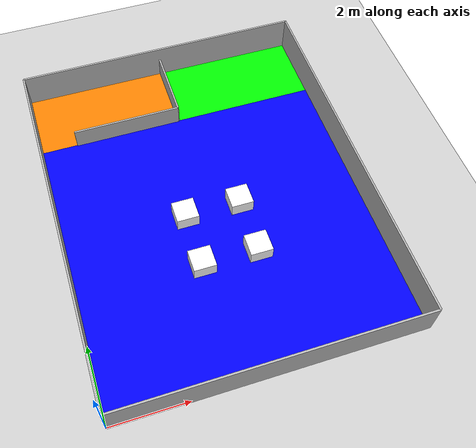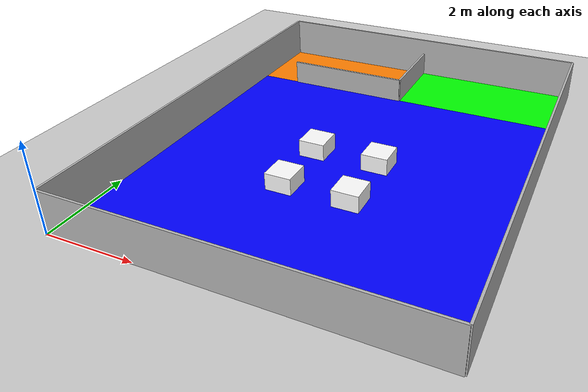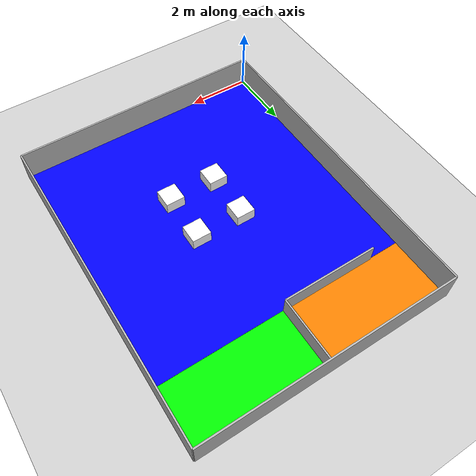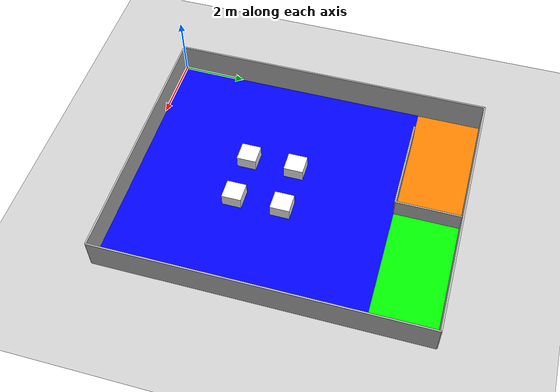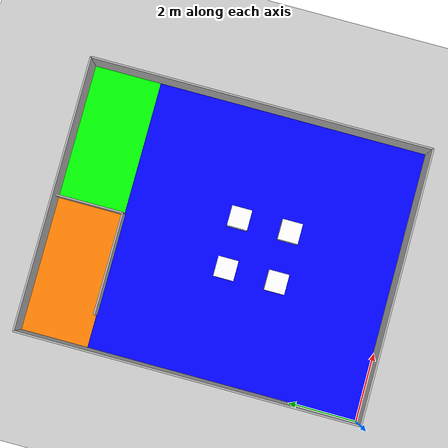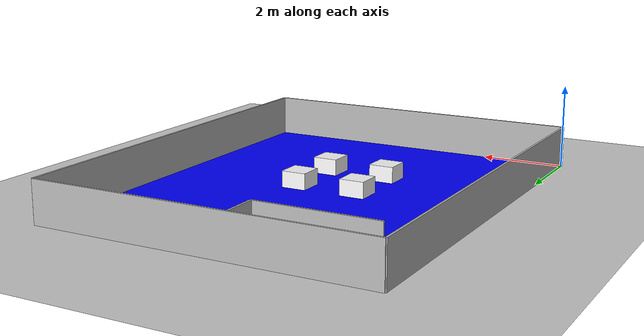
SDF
<sdf version='1.7'>
  <world name='default'>

    <!-- 실내 환경용 간단한 조명 -->
    <light name='ambient_light' type='point'>
      <diffuse>0.5 0.5 0.5 1</diffuse>
      <pose>0 0 5 0 0 0</pose>
      <cast_shadows>0</cast_shadows>
    </light>

    <!-- 지면 -->
    <model name='ground_plane'>
      <static>1</static>
      <link name='link'>
        <collision name='collision'>
          <geometry>
            <plane>
              <normal>0 0 1</normal>
              <size>100 100</size>
            </plane>
          </geometry>
          <surface>
            <friction>
              <ode>
                <mu>1.0</mu>
                <mu2>1.0</mu2>
              </ode>
            </friction>
          </surface>
        </collision>
        <visual name='visual'>
          <geometry>
            <plane>
              <normal>0 0 1</normal>
              <size>100 100</size>
            </plane>
          </geometry>
          <material>
            <script>
              <uri>file://media/materials/scripts/gazebo.material</uri>
              <name>Gazebo/Grey</name>
            </script>
          </material>
        </visual>
      </link>
    </model>

    <!-- 중력 및 물리 설정 -->
    <gravity>0 0 -9.8</gravity>
    <physics type='ode'>
      <max_step_size>0.001</max_step_size>
      <real_time_factor>1</real_time_factor>
      <real_time_update_rate>1000</real_time_update_rate>
    </physics>

    <!-- 간결한 환경 -->
    <scene>
      <ambient>0.4 0.4 0.4 1</ambient>
      <background>0.7 0.7 0.7 1</background>
      <shadows>0</shadows>
    </scene>

    <!-- 카메라 위치 조정 -->
    <gui fullscreen='0'>
      <camera name='user_camera'>
        <pose>3 -3 2 0 0.5 1.57</pose> <!-- 로봇 출발 위치 중심 -->
        <view_controller>orbit</view_controller>
      </camera>
    </gui>

    <!-- 장판 설치 -->
    <model name="red_tile">
      <static>true</static>
      <link name="red_tile">
        <visual name="red_tile">
          <geometry>
            <plane>
              <size>3 3</size>
            </plane>
          </geometry>
          <material>
            <ambient>1 0 0 1</ambient>
            <diffuse>1 0 0 1</diffuse>
          </material>
          <pose>4 4 0.007 0 0 0</pose>  <!-- Z축으로 살짝 띄움 -->
        </visual>
      </link>
    </model>

    <model name="yellow_tile">
      <static>true</static>
      <link name="yellow_tile">
        <visual name="yellow_tile">
          <geometry>
            <plane>
              <size>5 5</size>
            </plane>
          </geometry>
          <material>
            <ambient>1 1 0 1</ambient>
            <diffuse>1 1 0 1</diffuse>
          </material>
          <pose>4 4 0.006 0 0 0</pose>  <!-- Z축으로 살짝 띄움 -->
        </visual>
      </link>
    </model>

    <model name="blue_tile">
      <static>true</static>
      <link name="blue_tile">
        <visual name="blue_tile">
          <geometry>
            <plane>
              <size>8 8</size>
            </plane>
          </geometry>
          <material>
            <ambient>0 0 1 1</ambient>
            <diffuse>0 0 1 1</diffuse>
          </material>
          <pose>4 4 0.005 0 0 0</pose>  <!-- Z축으로 살짝 띄움 -->
        </visual>
      </link>
    </model>

    <model name="green_tile">
      <static>true</static>
      <link name="link">
        <visual name="green_tile">
          <geometry>
            <plane>
              <size>4 2</size>
            </plane>
          </geometry>
          <material>
            <ambient>0 1 0 1</ambient>
            <diffuse>0 1 0 1</diffuse>
          </material>
          <pose>6 9 0.005 0 0 0</pose>  <!-- Z축으로 살짝 띄움 -->
        </visual>
      </link>
    </model>

    <model name="orange_tile">
      <static>true</static>
      <link name="link">
        <visual name="orange_tile">
          <geometry>
            <plane>
              <size>4 2</size>
            </plane>
          </geometry>
          <material>
            <ambient>1 0.5 0 1</ambient>
            <diffuse>1 0.5 0 1</diffuse>
          </material>
          <pose>2 9 0.005 0 0 0</pose>  <!-- Z축으로 살짝 띄움 -->
        </visual>
      </link>
    </model>

    <!-- 좌석 설치 -->
    <model name="seat1">
      <static>true</static>
      <link name="seat1">
        <pose>3.25 4.75 0.2 0 0 0</pose>  <!-- 위치 (X, Y, Z) -->
        <visual name="visual">
          <geometry>
            <box>
              <size>0.6 0.6 0.4</size>  <!-- 크기 -->
            </box>
          </geometry>
          <material>
            <ambient>1 1 1 1</ambient>
            <diffuse>1 1 1 1</diffuse>
          </material>
        </visual>
        <collision name="collision">
          <geometry>
            <box>
              <size>0.6 0.6 0.4</size>  <!-- 크기 -->
            </box>
          </geometry>
        </collision>
      </link>
    </model>

    <model name="seat2">
      <static>true</static>
      <link name="seat2">
        <pose>4.75 4.75 0.2 0 0 0</pose>  <!-- 위치 (X, Y, Z) -->
        <visual name="visual">
          <geometry>
            <box>
              <size>0.6 0.6 0.4</size>  <!-- 크기 -->
            </box>
          </geometry>
          <material>
            <ambient>1 1 1 1</ambient>
            <diffuse>1 1 1 1</diffuse>
          </material>
        </visual>
        <collision name="collision">
          <geometry>
            <box>
              <size>0.6 0.6 0.4</size>  <!-- 크기 -->
            </box>
          </geometry>
        </collision>
      </link>
    </model>

    <model name="seat3">
      <static>true</static>
      <link name="seat3">
        <pose>4.75 3.25 0.2 0 0 0</pose>  <!-- 위치 (X, Y, Z) -->
        <visual name="visual">
          <geometry>
            <box>
              <size>0.6 0.6 0.4</size>  <!-- 크기 -->
            </box>
          </geometry>
          <material>
            <ambient>1 1 1 1</ambient>
            <diffuse>1 1 1 1</diffuse>
          </material>
        </visual>
        <collision name="collision">
          <geometry>
            <box>
              <size>0.6 0.6 0.4</size>  <!-- 크기 -->
            </box>
          </geometry>
        </collision>
      </link>
    </model>

    <model name="seat4">
      <static>true</static>
      <link name="seat4">
        <pose>3.25 3.25 0.2 0 0 0</pose>  <!-- 위치 (X, Y, Z) -->
        <visual name="visual">
          <geometry>
            <box>
              <size>0.6 0.6 0.4</size>  <!-- 크기 -->
            </box>
          </geometry>
          <material>
            <ambient>1 1 1 1</ambient>
            <diffuse>1 1 1 1</diffuse>
          </material>
        </visual>
        <collision name="collision">
          <geometry>
            <box>
              <size>0.6 0.6 0.4</size>  <!-- 크기 -->
            </box>
          </geometry>
        </collision>
      </link>
    </model>

    <!-- 벽 제작 -->
    <model name="N_wall">
      <static>true</static>
      <link name="N_wall">
        <pose>4 10 0.5 0 0 0</pose>
        <visual name="visual">
          <geometry>
            <box>
              <size>8 0.05 1</size>
            </box>
          </geometry>
        </visual>
        <collision name="collision">
          <geometry>
            <box>
              <size>8 0.05 1</size>
            </box>
          </geometry>
        </collision>
      </link>
    </model>

    <model name="E_wall">
      <static>true</static>
      <link name="E_wall">
        <pose>8 5 0.5 0 0 0</pose>
        <visual name="visual">
          <geometry>
            <box>
              <size>0.05 10 1</size>
            </box>
          </geometry>
        </visual>
        <collision name="collision">
          <geometry>
            <box>
              <size>0.05 10 1</size>
            </box>
          </geometry>
        </collision>
      </link>
    </model>

    <model name="S_wall">
      <static>true</static>
      <link name="link">
        <pose>4 0 0.5 0 0 0</pose>
        <visual name="visual">
          <geometry>
            <box>
              <size>8 0.05 1</size>
            </box>
          </geometry>
        </visual>
        <collision name="collision">
          <geometry>
            <box>
              <size>8 0.05 1</size>
            </box>
          </geometry>
        </collision>
      </link>
    </model>

    <model name="W_wall">
      <static>true</static>
      <link name="link">
        <pose>0 5 0.5 0 0 0</pose>
        <visual name="visual">
          <geometry>
            <box>
              <size>0.05 10 1</size>
            </box>
          </geometry>
        </visual>
        <collision name="collision">
          <geometry>
            <box>
              <size>0.05 10 1</size>
            </box>
          </geometry>
        </collision>
      </link>
    </model>

   <model name="KE_wall">
      <static>true</static>
      <link name="KE_wall">
        <pose>4 9 0.3 0 0 0</pose>
        <visual name="visual">
          <geometry>
            <box>
              <size>0.05 2 0.6</size>
            </box>
          </geometry>
        </visual>
        <collision name="collision">
          <geometry>
            <box>
              <size>0.05 2 0.6</size>
            </box>
          </geometry>
        </collision>
        <material>
          <ambient>1 1 0 1</ambient>
          <diffuse>1 1 0 1</diffuse>
        </material>
      </link>
    </model>

   <model name="KS_wall">
      <static>true</static>
      <link name="KS_wall">
        <pose>2.5 8 0.3 0 0 0</pose>
        <visual name="visual">
          <geometry>
            <box>
              <size>3 0.05 0.6</size>
            </box>
          </geometry>
        </visual>
        <collision name="collision">
          <geometry>
            <box>
              <size>3 0.05 0.6</size>
            </box>
          </geometry>
        </collision>
        <material>
          <ambient>1 1 0 1</ambient>
          <diffuse>1 1 0 1</diffuse>
        </material>
      </link>
    </model>

  </world>
</sdf>
